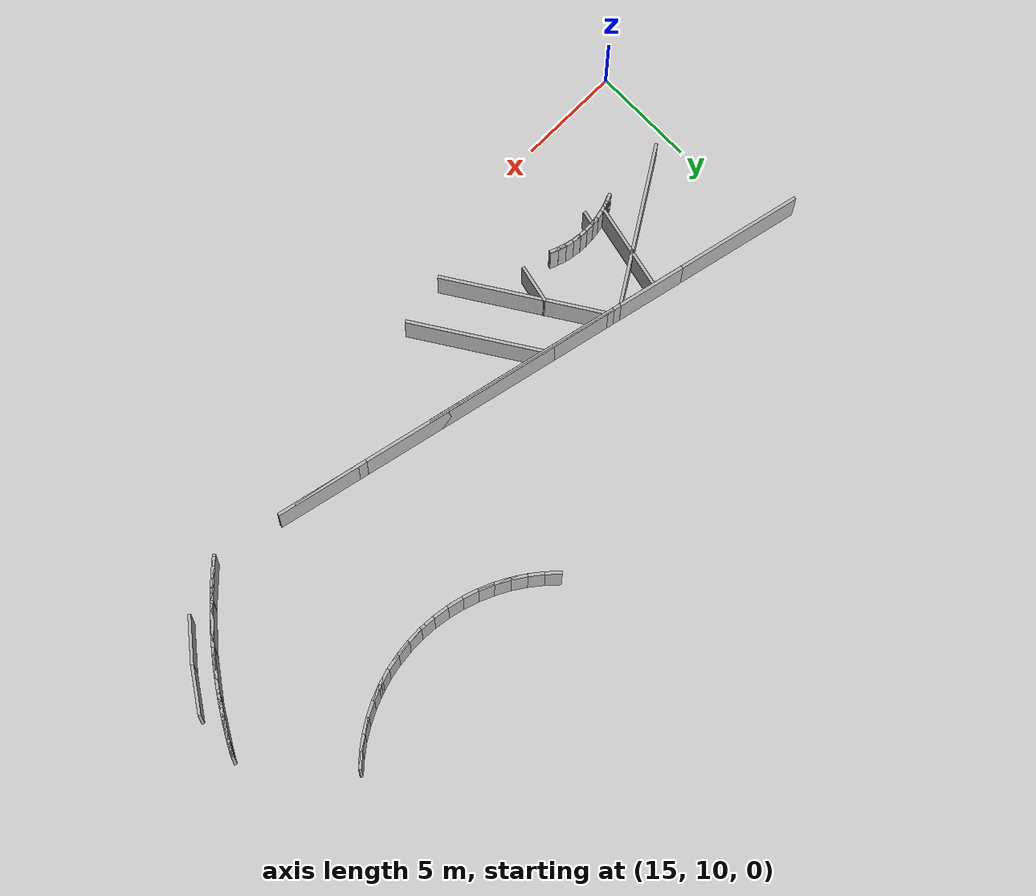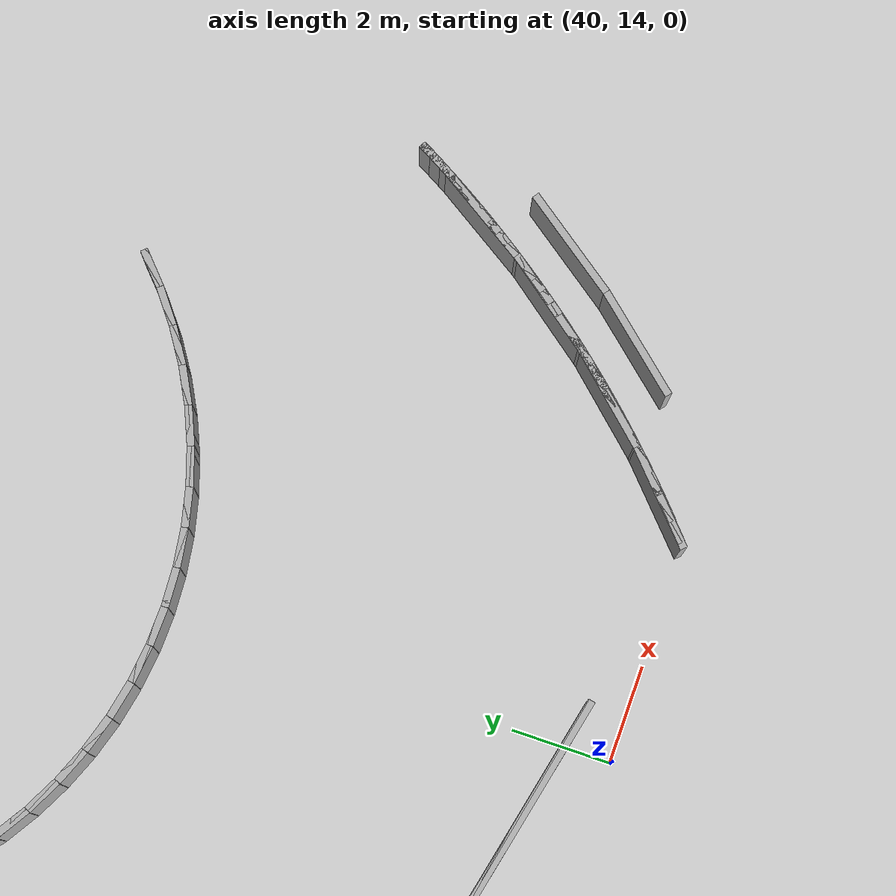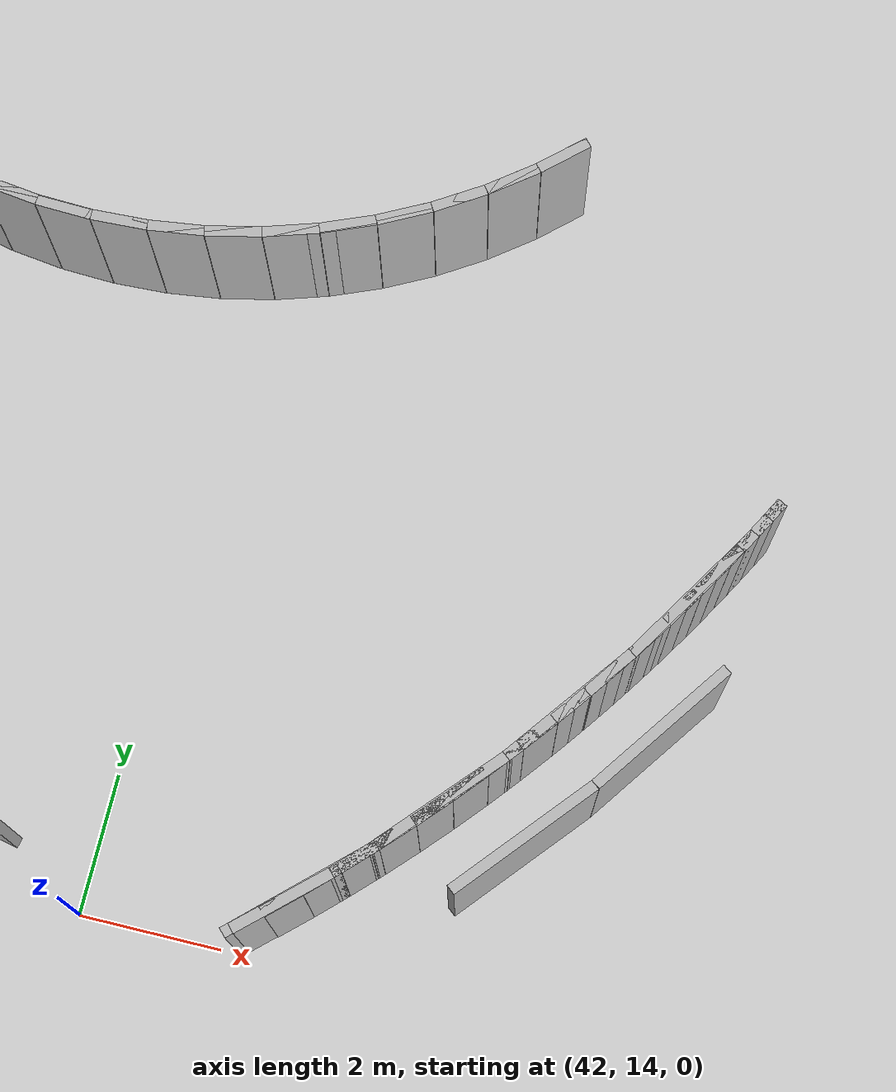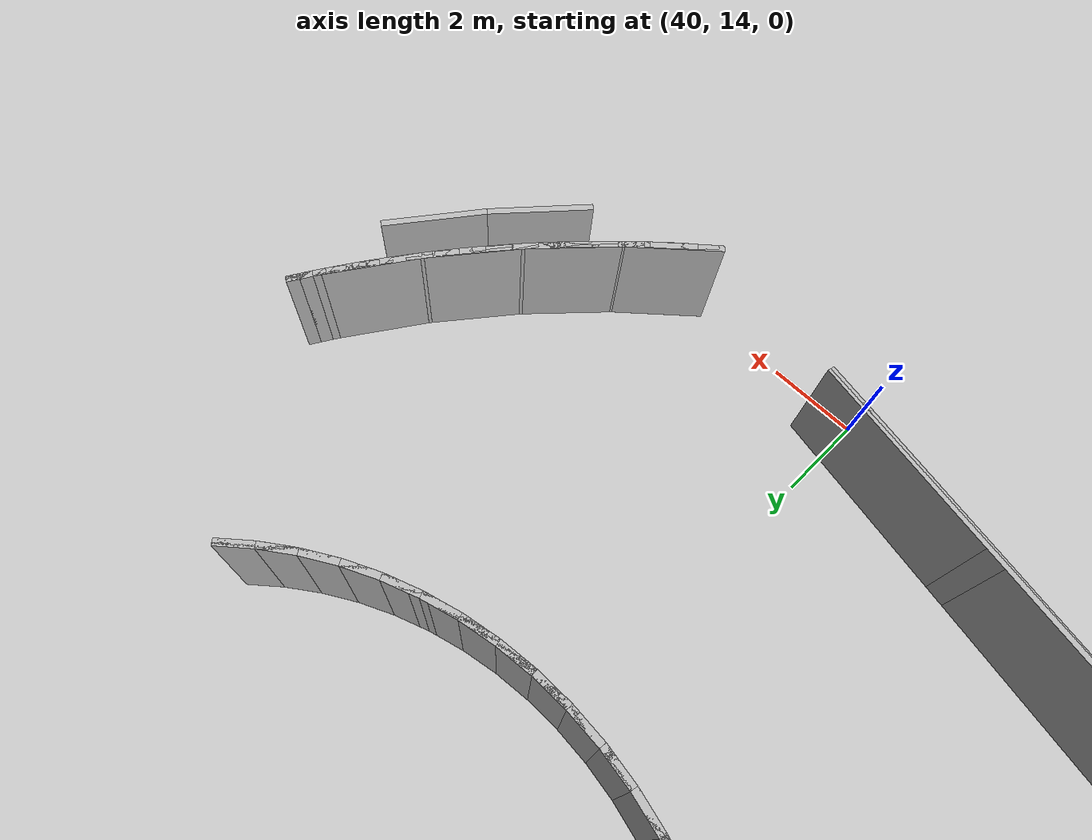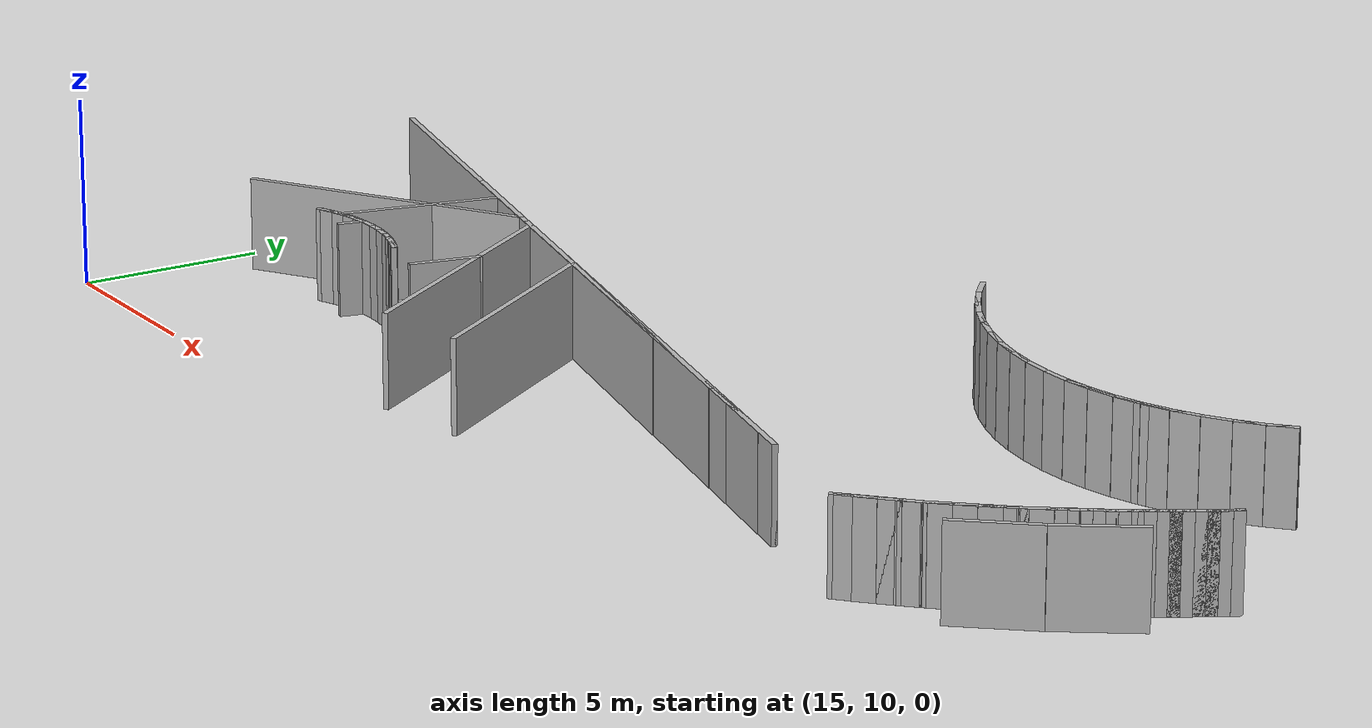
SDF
<sdf version="1.6">
 <model name="sps_2304">
  <static>1</static>
  <allow_auto_disable>0</allow_auto_disable>
  <link name="Wall1454">
   <collision name="collision"><geometry><box><size>18.0988 0.15 2.5</size></box></geometry></collision>
   <visual name="visual">
    <geometry><box><size>18.0988 0.15 2.5</size></box></geometry>
    <transparency>0.0</transparency>
   </visual>
   <pose>32.0788 16.6818 1.25 0 0 -0.213736</pose>
  </link>
  <link name="Wall2070">
   <collision name="collision"><geometry><box><size>1.91861 0.15 2.5</size></box></geometry></collision>
   <visual name="visual">
    <geometry><box><size>1.91861 0.15 2.5</size></box></geometry>
    <transparency>0.0</transparency>
   </visual>
   <pose>24.9954 15.1911 1.25 0 0 -1.78487</pose>
  </link>
  <link name="Wall2394">
   <collision name="collision"><geometry><box><size>4.31626 0.15 2.5</size></box></geometry></collision>
   <visual name="visual">
    <geometry><box><size>4.31626 0.15 2.5</size></box></geometry>
    <transparency>0.0</transparency>
   </visual>
   <pose>20.6217 16.9621 1.25 0 -0 1.35657</pose>
  </link>
  <link name="Wall2921">
   <collision name="collision"><geometry><box><size>20.0003 0.15 2.5</size></box></geometry></collision>
   <visual name="visual">
    <geometry><box><size>20.0003 0.15 2.5</size></box></geometry>
    <transparency>0.0</transparency>
   </visual>
   <pose>23.2331 18.5973 1.25 0 0 -0.214192</pose>
  </link>
  <link name="Wall4091">
   <collision name="collision"><geometry><box><size>1.46341 0.15 2.5</size></box></geometry></collision>
   <visual name="visual">
    <geometry><box><size>1.46341 0.15 2.5</size></box></geometry>
    <transparency>0.0</transparency>
   </visual>
   <pose>44.8718 14.6093 1.25 0 -0 0.747138</pose>
  </link>
  <link name="Wall5081">
   <collision name="collision"><geometry><box><size>7.98288 0.15 2.5</size></box></geometry></collision>
   <visual name="visual">
    <geometry><box><size>7.98288 0.15 2.5</size></box></geometry>
    <transparency>0.0</transparency>
   </visual>
   <pose>25.7436 15.1719 1.25 0 -0 2.14348</pose>
  </link>
  <link name="Wall5082">
   <collision name="collision"><geometry><box><size>3.39548 0.15 2.5</size></box></geometry></collision>
   <visual name="visual">
    <geometry><box><size>3.39548 0.15 2.5</size></box></geometry>
    <transparency>0.0</transparency>
   </visual>
   <pose>25.2397 18.1663 1.25 0 0 -0.213789</pose>
  </link>
  <link name="Wall5083">
   <collision name="collision"><geometry><box><size>6.57427 0.15 2.5</size></box></geometry></collision>
   <visual name="visual">
    <geometry><box><size>6.57427 0.15 2.5</size></box></geometry>
    <transparency>0.0</transparency>
   </visual>
   <pose>28.6811 15.0441 1.25 0 0 -0.997731</pose>
  </link>
  <link name="Wall7805">
   <collision name="collision"><geometry><box><size>0.282259 0.15 2.5</size></box></geometry></collision>
   <visual name="visual">
    <geometry><box><size>0.282259 0.15 2.5</size></box></geometry>
    <transparency>0.0</transparency>
   </visual>
   <pose>49.941 21.1646 1.25 0 0 -2.06143</pose>
  </link>
  <link name="Wall7806">
   <collision name="collision"><geometry><box><size>0.282415 0.15 2.5</size></box></geometry></collision>
   <visual name="visual">
    <geometry><box><size>0.282415 0.15 2.5</size></box></geometry>
    <transparency>0.0</transparency>
   </visual>
   <pose>49.8066 20.9163 1.25 0 0 -2.07244</pose>
  </link>
  <link name="Wall7807">
   <collision name="collision"><geometry><box><size>0.282339 0.15 2.5</size></box></geometry></collision>
   <visual name="visual">
    <geometry><box><size>0.282339 0.15 2.5</size></box></geometry>
    <transparency>0.0</transparency>
   </visual>
   <pose>49.6694 20.6695 1.25 0 0 -2.08396</pose>
  </link>
  <link name="Wall7808">
   <collision name="collision"><geometry><box><size>0.282406 0.15 2.5</size></box></geometry></collision>
   <visual name="visual">
    <geometry><box><size>0.282406 0.15 2.5</size></box></geometry>
    <transparency>0.0</transparency>
   </visual>
   <pose>49.5293 20.4243 1.25 0 0 -2.09528</pose>
  </link>
  <link name="Wall7809">
   <collision name="collision"><geometry><box><size>0.282279 0.15 2.5</size></box></geometry></collision>
   <visual name="visual">
    <geometry><box><size>0.282279 0.15 2.5</size></box></geometry>
    <transparency>0.0</transparency>
   </visual>
   <pose>49.3866 20.1807 1.25 0 0 -2.10606</pose>
  </link>
  <link name="Wall7810">
   <collision name="collision"><geometry><box><size>0.282365 0.15 2.5</size></box></geometry></collision>
   <visual name="visual">
    <geometry><box><size>0.282365 0.15 2.5</size></box></geometry>
    <transparency>0.0</transparency>
   </visual>
   <pose>49.2413 19.9387 1.25 0 0 -2.11748</pose>
  </link>
  <link name="Wall7811">
   <collision name="collision"><geometry><box><size>0.282435 0.15 2.5</size></box></geometry></collision>
   <visual name="visual">
    <geometry><box><size>0.282435 0.15 2.5</size></box></geometry>
    <transparency>0.0</transparency>
   </visual>
   <pose>49.0931 19.6983 1.25 0 0 -2.12901</pose>
  </link>
  <link name="Wall7812">
   <collision name="collision"><geometry><box><size>0.282441 0.15 2.5</size></box></geometry></collision>
   <visual name="visual">
    <geometry><box><size>0.282441 0.15 2.5</size></box></geometry>
    <transparency>0.0</transparency>
   </visual>
   <pose>48.9421 19.4596 1.25 0 0 -2.14076</pose>
  </link>
  <link name="Wall7813">
   <collision name="collision"><geometry><box><size>0.282384 0.15 2.5</size></box></geometry></collision>
   <visual name="visual">
    <geometry><box><size>0.282384 0.15 2.5</size></box></geometry>
    <transparency>0.0</transparency>
   </visual>
   <pose>48.7884 19.2227 1.25 0 0 -2.15196</pose>
  </link>
  <link name="Wall7814">
   <collision name="collision"><geometry><box><size>0.282329 0.15 2.5</size></box></geometry></collision>
   <visual name="visual">
    <geometry><box><size>0.282329 0.15 2.5</size></box></geometry>
    <transparency>0.0</transparency>
   </visual>
   <pose>48.6321 18.9875 1.25 0 0 -2.16222</pose>
  </link>
  <link name="Wall7815">
   <collision name="collision"><geometry><box><size>0.282259 0.15 2.5</size></box></geometry></collision>
   <visual name="visual">
    <geometry><box><size>0.282259 0.15 2.5</size></box></geometry>
    <transparency>0.0</transparency>
   </visual>
   <pose>48.4733 18.7541 1.25 0 0 -2.17415</pose>
  </link>
  <link name="Wall7816">
   <collision name="collision"><geometry><box><size>0.282443 0.15 2.5</size></box></geometry></collision>
   <visual name="visual">
    <geometry><box><size>0.282443 0.15 2.5</size></box></geometry>
    <transparency>0.0</transparency>
   </visual>
   <pose>48.3119 18.5225 1.25 0 0 -2.18529</pose>
  </link>
  <link name="Wall7817">
   <collision name="collision"><geometry><box><size>0.282303 0.15 2.5</size></box></geometry></collision>
   <visual name="visual">
    <geometry><box><size>0.282303 0.15 2.5</size></box></geometry>
    <transparency>0.0</transparency>
   </visual>
   <pose>48.1476 18.2928 1.25 0 0 -2.19761</pose>
  </link>
  <link name="Wall7818">
   <collision name="collision"><geometry><box><size>0.282379 0.15 2.5</size></box></geometry></collision>
   <visual name="visual">
    <geometry><box><size>0.282379 0.15 2.5</size></box></geometry>
    <transparency>0.0</transparency>
   </visual>
   <pose>47.9809 18.065 1.25 0 0 -2.20786</pose>
  </link>
  <link name="Wall7819">
   <collision name="collision"><geometry><box><size>0.282535 0.15 2.5</size></box></geometry></collision>
   <visual name="visual">
    <geometry><box><size>0.282535 0.15 2.5</size></box></geometry>
    <transparency>0.0</transparency>
   </visual>
   <pose>47.8116 17.8389 1.25 0 0 -2.21905</pose>
  </link>
  <link name="Wall7820">
   <collision name="collision"><geometry><box><size>0.564608 0.15 2.5</size></box></geometry></collision>
   <visual name="visual">
    <geometry><box><size>0.564608 0.15 2.5</size></box></geometry>
    <transparency>0.0</transparency>
   </visual>
   <pose>47.5519 17.5043 1.25 0 0 -2.23674</pose>
  </link>
  <link name="Wall7821">
   <collision name="collision"><geometry><box><size>0.564838 0.15 2.5</size></box></geometry></collision>
   <visual name="visual">
    <geometry><box><size>0.564838 0.15 2.5</size></box></geometry>
    <transparency>0.0</transparency>
   </visual>
   <pose>47.1981 17.0642 1.25 0 0 -2.25916</pose>
  </link>
  <link name="Wall7822">
   <collision name="collision"><geometry><box><size>0.564842 0.15 2.5</size></box></geometry></collision>
   <visual name="visual">
    <geometry><box><size>0.564842 0.15 2.5</size></box></geometry>
    <transparency>0.0</transparency>
   </visual>
   <pose>46.8344 16.632 1.25 0 0 -2.28132</pose>
  </link>
  <link name="Wall7823">
   <collision name="collision"><geometry><box><size>0.564625 0.15 2.5</size></box></geometry></collision>
   <visual name="visual">
    <geometry><box><size>0.564625 0.15 2.5</size></box></geometry>
    <transparency>0.0</transparency>
   </visual>
   <pose>46.4612 16.2082 1.25 0 0 -2.30427</pose>
  </link>
  <link name="Wall7824">
   <collision name="collision"><geometry><box><size>0.564676 0.15 2.5</size></box></geometry></collision>
   <visual name="visual">
    <geometry><box><size>0.564676 0.15 2.5</size></box></geometry>
    <transparency>0.0</transparency>
   </visual>
   <pose>46.0786 15.793 1.25 0 0 -2.32638</pose>
  </link>
  <link name="Wall7825">
   <collision name="collision"><geometry><box><size>0.564827 0.15 2.5</size></box></geometry></collision>
   <visual name="visual">
    <geometry><box><size>0.564827 0.15 2.5</size></box></geometry>
    <transparency>0.0</transparency>
   </visual>
   <pose>45.6867 15.3864 1.25 0 0 -2.34924</pose>
  </link>
  <link name="Wall7826">
   <collision name="collision"><geometry><box><size>0.564754 0.15 2.5</size></box></geometry></collision>
   <visual name="visual">
    <geometry><box><size>0.564754 0.15 2.5</size></box></geometry>
    <transparency>0.0</transparency>
   </visual>
   <pose>45.2856 14.9888 1.25 0 0 -2.37194</pose>
  </link>
  <link name="Wall7832">
   <collision name="collision"><geometry><box><size>18.0988 0.15 2.5</size></box></geometry></collision>
   <visual name="visual">
    <geometry><box><size>18.0988 0.15 2.5</size></box></geometry>
    <transparency>0.0</transparency>
   </visual>
   <pose>32.0788 16.6818 1.25 0 -0 2.92786</pose>
  </link>
  <link name="Wall9503">
   <collision name="collision"><geometry><box><size>3.38951 0.15 2.5</size></box></geometry></collision>
   <visual name="visual">
    <geometry><box><size>3.38951 0.15 2.5</size></box></geometry>
    <transparency>0.0</transparency>
   </visual>
   <pose>21.224 19.0398 1.25 0 0 -0.214595</pose>
  </link>
  <link name="Wall9504">
   <collision name="collision"><geometry><box><size>7.98252 0.15 2.5</size></box></geometry></collision>
   <visual name="visual">
    <geometry><box><size>7.98252 0.15 2.5</size></box></geometry>
    <transparency>0.0</transparency>
   </visual>
   <pose>19.525 16.5166 1.25 0 0 -2.56907</pose>
  </link>
  <link name="Wall9969">
   <collision name="collision"><geometry><box><size>2.60003 0.15 2.5</size></box></geometry></collision>
   <visual name="visual">
    <geometry><box><size>2.60003 0.15 2.5</size></box></geometry>
    <transparency>0.0</transparency>
   </visual>
   <pose>38.1368 15.3661 1.25 0 0 -0.214246</pose>
  </link>
  <link name="Wall10477">
   <collision name="collision"><geometry><box><size>3.79995 0.15 2.5</size></box></geometry></collision>
   <visual name="visual">
    <geometry><box><size>3.79995 0.15 2.5</size></box></geometry>
    <transparency>0.0</transparency>
   </visual>
   <pose>38.1859 15.3554 1.25 0 0 -0.214315</pose>
  </link>
  <link name="Wall10631">
   <collision name="collision"><geometry><box><size>0.396932 0.15 2.5</size></box></geometry></collision>
   <visual name="visual">
    <geometry><box><size>0.396932 0.15 2.5</size></box></geometry>
    <transparency>0.0</transparency>
   </visual>
   <pose>19.7449 14.6774 1.25 0 -0 0.392414</pose>
  </link>
  <link name="Wall10632">
   <collision name="collision"><geometry><box><size>0.396923 0.15 2.5</size></box></geometry></collision>
   <visual name="visual">
    <geometry><box><size>0.396923 0.15 2.5</size></box></geometry>
    <transparency>0.0</transparency>
   </visual>
   <pose>20.1175 14.8129 1.25 0 -0 0.305022</pose>
  </link>
  <link name="Wall10633">
   <collision name="collision"><geometry><box><size>0.396768 0.15 2.5</size></box></geometry></collision>
   <visual name="visual">
    <geometry><box><size>0.396768 0.15 2.5</size></box></geometry>
    <transparency>0.0</transparency>
   </visual>
   <pose>20.5005 14.9154 1.25 0 -0 0.217851</pose>
  </link>
  <link name="Wall10634">
   <collision name="collision"><geometry><box><size>0.397194 0.15 2.5</size></box></geometry></collision>
   <visual name="visual">
    <geometry><box><size>0.397194 0.15 2.5</size></box></geometry>
    <transparency>0.0</transparency>
   </visual>
   <pose>20.8911 14.9842 1.25 0 -0 0.130835</pose>
  </link>
  <link name="Wall10635">
   <collision name="collision"><geometry><box><size>0.396797 0.15 2.5</size></box></geometry></collision>
   <visual name="visual">
    <geometry><box><size>0.396797 0.15 2.5</size></box></geometry>
    <transparency>0.0</transparency>
   </visual>
   <pose>21.2862 15.0187 1.25 0 -0 0.0433908</pose>
  </link>
  <link name="Wall10636">
   <collision name="collision"><geometry><box><size>0.396988 0.15 2.5</size></box></geometry></collision>
   <visual name="visual">
    <geometry><box><size>0.396988 0.15 2.5</size></box></geometry>
    <transparency>0.0</transparency>
   </visual>
   <pose>21.6828 15.0186 1.25 0 0 -0.0438316</pose>
  </link>
  <link name="Wall10637">
   <collision name="collision"><geometry><box><size>0.397036 0.15 2.5</size></box></geometry></collision>
   <visual name="visual">
    <geometry><box><size>0.397036 0.15 2.5</size></box></geometry>
    <transparency>0.0</transparency>
   </visual>
   <pose>22.0779 14.9839 1.25 0 0 -0.131353</pose>
  </link>
  <link name="Wall10638">
   <collision name="collision"><geometry><box><size>0.397 0.15 2.5</size></box></geometry></collision>
   <visual name="visual">
    <geometry><box><size>0.397 0.15 2.5</size></box></geometry>
    <transparency>0.0</transparency>
   </visual>
   <pose>22.4685 14.9149 1.25 0 0 -0.218352</pose>
  </link>
  <link name="Wall10639">
   <collision name="collision"><geometry><box><size>0.396803 0.15 2.5</size></box></geometry></collision>
   <visual name="visual">
    <geometry><box><size>0.396803 0.15 2.5</size></box></geometry>
    <transparency>0.0</transparency>
   </visual>
   <pose>22.8515 14.8122 1.25 0 0 -0.305601</pose>
  </link>
  <link name="Wall10640">
   <collision name="collision"><geometry><box><size>0.397025 0.15 2.5</size></box></geometry></collision>
   <visual name="visual">
    <geometry><box><size>0.397025 0.15 2.5</size></box></geometry>
    <transparency>0.0</transparency>
   </visual>
   <pose>23.2241 14.6765 1.25 0 0 -0.392982</pose>
  </link>
  <link name="Wall11242">
   <collision name="collision"><geometry><box><size>0.0033038 0.15 2.5</size></box></geometry></collision>
   <visual name="visual">
    <geometry><box><size>0.0033038 0.15 2.5</size></box></geometry>
    <transparency>0.0</transparency>
   </visual>
   <pose>22.574 14.8928 1.25 0 0 -0.438859</pose>
  </link>
  <link name="Wall11243">
   <collision name="collision"><geometry><box><size>0.371323 0.15 2.5</size></box></geometry></collision>
   <visual name="visual">
    <geometry><box><size>0.371323 0.15 2.5</size></box></geometry>
    <transparency>0.0</transparency>
   </visual>
   <pose>22.7537 14.8403 1.25 0 0 -0.28286</pose>
  </link>
  <link name="Wall11244">
   <collision name="collision"><geometry><box><size>0.371276 0.15 2.5</size></box></geometry></collision>
   <visual name="visual">
    <geometry><box><size>0.371276 0.15 2.5</size></box></geometry>
    <transparency>0.0</transparency>
   </visual>
   <pose>23.1054 14.7222 1.25 0 0 -0.36512</pose>
  </link>
  <link name="Wall11309">
   <collision name="collision"><geometry><box><size>0.785075 0.15 2.5</size></box></geometry></collision>
   <visual name="visual">
    <geometry><box><size>0.785075 0.15 2.5</size></box></geometry>
    <transparency>0.0</transparency>
   </visual>
   <pose>46.0551 25.4238 1.25 0 0 -2.40013</pose>
  </link>
  <link name="Wall11310">
   <collision name="collision"><geometry><box><size>0.785249 0.15 2.5</size></box></geometry></collision>
   <visual name="visual">
    <geometry><box><size>0.785249 0.15 2.5</size></box></geometry>
    <transparency>0.0</transparency>
   </visual>
   <pose>45.4541 24.9198 1.25 0 0 -2.48749</pose>
  </link>
  <link name="Wall11311">
   <collision name="collision"><geometry><box><size>0.785062 0.15 2.5</size></box></geometry></collision>
   <visual name="visual">
    <geometry><box><size>0.785062 0.15 2.5</size></box></geometry>
    <transparency>0.0</transparency>
   </visual>
   <pose>44.8114 24.4701 1.25 0 0 -2.57464</pose>
  </link>
  <link name="Wall11312">
   <collision name="collision"><geometry><box><size>0.785237 0.15 2.5</size></box></geometry></collision>
   <visual name="visual">
    <geometry><box><size>0.785237 0.15 2.5</size></box></geometry>
    <transparency>0.0</transparency>
   </visual>
   <pose>44.1319 24.0781 1.25 0 0 -2.66185</pose>
  </link>
  <link name="Wall11313">
   <collision name="collision"><geometry><box><size>0.785125 0.15 2.5</size></box></geometry></collision>
   <visual name="visual">
    <geometry><box><size>0.785125 0.15 2.5</size></box></geometry>
    <transparency>0.0</transparency>
   </visual>
   <pose>43.421 23.7467 1.25 0 0 -2.74903</pose>
  </link>
  <link name="Wall11314">
   <collision name="collision"><geometry><box><size>0.785275 0.15 2.5</size></box></geometry></collision>
   <visual name="visual">
    <geometry><box><size>0.785275 0.15 2.5</size></box></geometry>
    <transparency>0.0</transparency>
   </visual>
   <pose>42.6837 23.4786 1.25 0 0 -2.83656</pose>
  </link>
  <link name="Wall11315">
   <collision name="collision"><geometry><box><size>0.785122 0.15 2.5</size></box></geometry></collision>
   <visual name="visual">
    <geometry><box><size>0.785122 0.15 2.5</size></box></geometry>
    <transparency>0.0</transparency>
   </visual>
   <pose>41.926 23.2758 1.25 0 0 -2.9236</pose>
  </link>
  <link name="Wall11316">
   <collision name="collision"><geometry><box><size>0.785119 0.15 2.5</size></box></geometry></collision>
   <visual name="visual">
    <geometry><box><size>0.785119 0.15 2.5</size></box></geometry>
    <transparency>0.0</transparency>
   </visual>
   <pose>41.1535 23.1398 1.25 0 0 -3.01109</pose>
  </link>
  <link name="Wall11317">
   <collision name="collision"><geometry><box><size>0.785099 0.15 2.5</size></box></geometry></collision>
   <visual name="visual">
    <geometry><box><size>0.785099 0.15 2.5</size></box></geometry>
    <transparency>0.0</transparency>
   </visual>
   <pose>40.3721 23.0717 1.25 0 0 -3.09828</pose>
  </link>
  <link name="Wall11318">
   <collision name="collision"><geometry><box><size>0.785176 0.15 2.5</size></box></geometry></collision>
   <visual name="visual">
    <geometry><box><size>0.785176 0.15 2.5</size></box></geometry>
    <transparency>0.0</transparency>
   </visual>
   <pose>39.5877 23.0719 1.25 0 -0 3.09781</pose>
  </link>
  <link name="Wall11319">
   <collision name="collision"><geometry><box><size>0.785146 0.15 2.5</size></box></geometry></collision>
   <visual name="visual">
    <geometry><box><size>0.785146 0.15 2.5</size></box></geometry>
    <transparency>0.0</transparency>
   </visual>
   <pose>38.8063 23.1405 1.25 0 -0 3.01023</pose>
  </link>
  <link name="Wall11320">
   <collision name="collision"><geometry><box><size>0.785082 0.15 2.5</size></box></geometry></collision>
   <visual name="visual">
    <geometry><box><size>0.785082 0.15 2.5</size></box></geometry>
    <transparency>0.0</transparency>
   </visual>
   <pose>38.0339 23.277 1.25 0 -0 2.92311</pose>
  </link>
  <link name="Wall11321">
   <collision name="collision"><geometry><box><size>0.785152 0.15 2.5</size></box></geometry></collision>
   <visual name="visual">
    <geometry><box><size>0.785152 0.15 2.5</size></box></geometry>
    <transparency>0.0</transparency>
   </visual>
   <pose>37.2763 23.4802 1.25 0 -0 2.83602</pose>
  </link>
  <link name="Wall11322">
   <collision name="collision"><geometry><box><size>0.785312 0.15 2.5</size></box></geometry></collision>
   <visual name="visual">
    <geometry><box><size>0.785312 0.15 2.5</size></box></geometry>
    <transparency>0.0</transparency>
   </visual>
   <pose>36.5392 23.7487 1.25 0 -0 2.74846</pose>
  </link>
  <link name="Wall11323">
   <collision name="collision"><geometry><box><size>0.784968 0.15 2.5</size></box></geometry></collision>
   <visual name="visual">
    <geometry><box><size>0.784968 0.15 2.5</size></box></geometry>
    <transparency>0.0</transparency>
   </visual>
   <pose>35.8284 24.0804 1.25 0 -0 2.6615</pose>
  </link>
  <link name="Wall11324">
   <collision name="collision"><geometry><box><size>0.785339 0.15 2.5</size></box></geometry></collision>
   <visual name="visual">
    <geometry><box><size>0.785339 0.15 2.5</size></box></geometry>
    <transparency>0.0</transparency>
   </visual>
   <pose>35.1492 24.4728 1.25 0 -0 2.57394</pose>
  </link>
  <link name="Wall11325">
   <collision name="collision"><geometry><box><size>0.78507 0.15 2.5</size></box></geometry></collision>
   <visual name="visual">
    <geometry><box><size>0.78507 0.15 2.5</size></box></geometry>
    <transparency>0.0</transparency>
   </visual>
   <pose>34.5067 24.9229 1.25 0 -0 2.48702</pose>
  </link>
  <link name="Wall16829">
   <collision name="collision"><geometry><box><size>0.397058 0.15 2.5</size></box></geometry></collision>
   <visual name="visual">
    <geometry><box><size>0.397058 0.15 2.5</size></box></geometry>
    <transparency>0.0</transparency>
   </visual>
   <pose>23.2158 14.6959 1.25 0 -0 2.74881</pose>
  </link>
  <link name="Wall16830">
   <collision name="collision"><geometry><box><size>0.396996 0.15 2.5</size></box></geometry></collision>
   <visual name="visual">
    <geometry><box><size>0.396996 0.15 2.5</size></box></geometry>
    <transparency>0.0</transparency>
   </visual>
   <pose>22.8431 14.8316 1.25 0 -0 2.83598</pose>
  </link>
  <link name="Wall16831">
   <collision name="collision"><geometry><box><size>0.396821 0.15 2.5</size></box></geometry></collision>
   <visual name="visual">
    <geometry><box><size>0.396821 0.15 2.5</size></box></geometry>
    <transparency>0.0</transparency>
   </visual>
   <pose>22.4601 14.9343 1.25 0 -0 2.92314</pose>
  </link>
  <link name="Wall16832">
   <collision name="collision"><geometry><box><size>0.396975 0.15 2.5</size></box></geometry></collision>
   <visual name="visual">
    <geometry><box><size>0.396975 0.15 2.5</size></box></geometry>
    <transparency>0.0</transparency>
   </visual>
   <pose>22.0697 15.0033 1.25 0 -0 3.01022</pose>
  </link>
  <link name="Wall16833">
   <collision name="collision"><geometry><box><size>0.396988 0.15 2.5</size></box></geometry></collision>
   <visual name="visual">
    <geometry><box><size>0.396988 0.15 2.5</size></box></geometry>
    <transparency>0.0</transparency>
   </visual>
   <pose>21.6746 15.038 1.25 0 -0 3.09776</pose>
  </link>
  <link name="Wall16834">
   <collision name="collision"><geometry><box><size>0.39698 0.15 2.5</size></box></geometry></collision>
   <visual name="visual">
    <geometry><box><size>0.39698 0.15 2.5</size></box></geometry>
    <transparency>0.0</transparency>
   </visual>
   <pose>21.278 15.0381 1.25 0 0 -3.09822</pose>
  </link>
  <link name="Wall16835">
   <collision name="collision"><geometry><box><size>0.397012 0.15 2.5</size></box></geometry></collision>
   <visual name="visual">
    <geometry><box><size>0.397012 0.15 2.5</size></box></geometry>
    <transparency>0.0</transparency>
   </visual>
   <pose>20.8829 15.0036 1.25 0 0 -3.0107</pose>
  </link>
  <link name="Wall16836">
   <collision name="collision"><geometry><box><size>0.396947 0.15 2.5</size></box></geometry></collision>
   <visual name="visual">
    <geometry><box><size>0.396947 0.15 2.5</size></box></geometry>
    <transparency>0.0</transparency>
   </visual>
   <pose>20.4923 14.9348 1.25 0 0 -2.92384</pose>
  </link>
  <link name="Wall16837">
   <collision name="collision"><geometry><box><size>0.396923 0.15 2.5</size></box></geometry></collision>
   <visual name="visual">
    <geometry><box><size>0.396923 0.15 2.5</size></box></geometry>
    <transparency>0.0</transparency>
   </visual>
   <pose>20.1092 14.8323 1.25 0 0 -2.83657</pose>
  </link>
  <link name="Wall16838">
   <collision name="collision"><geometry><box><size>0.397011 0.15 2.5</size></box></geometry></collision>
   <visual name="visual">
    <geometry><box><size>0.397011 0.15 2.5</size></box></geometry>
    <transparency>0.0</transparency>
   </visual>
   <pose>19.7365 14.6968 1.25 0 0 -2.7491</pose>
  </link>
  <link name="Wall16883">
   <collision name="collision"><geometry><box><size>2.31549 0.15 2.5</size></box></geometry></collision>
   <visual name="visual">
    <geometry><box><size>2.31549 0.15 2.5</size></box></geometry>
    <transparency>0.0</transparency>
   </visual>
   <pose>47.6927 16.1342 1.25 0 -0 0.867091</pose>
  </link>
  <link name="Wall16884">
   <collision name="collision"><geometry><box><size>2.31537 0.15 2.5</size></box></geometry></collision>
   <visual name="visual">
    <geometry><box><size>2.31537 0.15 2.5</size></box></geometry>
    <transparency>0.0</transparency>
   </visual>
   <pose>49.1095 17.9627 1.25 0 -0 0.956149</pose>
  </link>
  <link name="Wall23965">
   <collision name="collision"><geometry><box><size>3.38951 0.15 2.5</size></box></geometry></collision>
   <visual name="visual">
    <geometry><box><size>3.38951 0.15 2.5</size></box></geometry>
    <transparency>0.0</transparency>
   </visual>
   <pose>21.224 19.0398 1.25 0 0 -0.214595</pose>
  </link>
  <link name="Wall23966">
   <collision name="collision"><geometry><box><size>7.98252 0.15 2.5</size></box></geometry></collision>
   <visual name="visual">
    <geometry><box><size>7.98252 0.15 2.5</size></box></geometry>
    <transparency>0.0</transparency>
   </visual>
   <pose>19.525 16.5166 1.25 0 0 -2.56907</pose>
  </link>
  <link name="Wall23968">
   <collision name="collision"><geometry><box><size>0.399868 0.15 2.5</size></box></geometry></collision>
   <visual name="visual">
    <geometry><box><size>0.399868 0.15 2.5</size></box></geometry>
    <transparency>0.0</transparency>
   </visual>
   <pose>19.974 14.7878 1.25 0 0 -2.80787</pose>
  </link>
  <link name="Wall23969">
   <collision name="collision"><geometry><box><size>0.399901 0.15 2.5</size></box></geometry></collision>
   <visual name="visual">
    <geometry><box><size>0.399901 0.15 2.5</size></box></geometry>
    <transparency>0.0</transparency>
   </visual>
   <pose>19.6027 14.6404 1.25 0 0 -2.71953</pose>
  </link>
  <link name="Wall27050">
   <collision name="collision"><geometry><box><size>7.98288 0.15 2.5</size></box></geometry></collision>
   <visual name="visual">
    <geometry><box><size>7.98288 0.15 2.5</size></box></geometry>
    <transparency>0.0</transparency>
   </visual>
   <pose>25.7436 15.1719 1.25 0 -0 2.14348</pose>
  </link>
  <link name="Wall27051">
   <collision name="collision"><geometry><box><size>3.39548 0.15 2.5</size></box></geometry></collision>
   <visual name="visual">
    <geometry><box><size>3.39548 0.15 2.5</size></box></geometry>
    <transparency>0.0</transparency>
   </visual>
   <pose>25.2397 18.1663 1.25 0 0 -0.213789</pose>
  </link>
  <link name="Wall27052">
   <collision name="collision"><geometry><box><size>6.57427 0.15 2.5</size></box></geometry></collision>
   <visual name="visual">
    <geometry><box><size>6.57427 0.15 2.5</size></box></geometry>
    <transparency>0.0</transparency>
   </visual>
   <pose>28.6811 15.0441 1.25 0 0 -0.997731</pose>
  </link>
  <link name="Wall29103">
   <collision name="collision"><geometry><box><size>0.785228 0.15 2.5</size></box></geometry></collision>
   <visual name="visual">
    <geometry><box><size>0.785228 0.15 2.5</size></box></geometry>
    <transparency>0.0</transparency>
   </visual>
   <pose>33.9056 25.4272 1.25 0 0 -0.742019</pose>
  </link>
  <link name="Wall29104">
   <collision name="collision"><geometry><box><size>0.785219 0.15 2.5</size></box></geometry></collision>
   <visual name="visual">
    <geometry><box><size>0.785219 0.15 2.5</size></box></geometry>
    <transparency>0.0</transparency>
   </visual>
   <pose>34.5064 24.9228 1.25 0 0 -0.654819</pose>
  </link>
  <link name="Wall29105">
   <collision name="collision"><geometry><box><size>0.785105 0.15 2.5</size></box></geometry></collision>
   <visual name="visual">
    <geometry><box><size>0.785105 0.15 2.5</size></box></geometry>
    <transparency>0.0</transparency>
   </visual>
   <pose>35.1489 24.4727 1.25 0 0 -0.567475</pose>
  </link>
  <link name="Wall29106">
   <collision name="collision"><geometry><box><size>0.785189 0.15 2.5</size></box></geometry></collision>
   <visual name="visual">
    <geometry><box><size>0.785189 0.15 2.5</size></box></geometry>
    <transparency>0.0</transparency>
   </visual>
   <pose>35.8281 24.0803 1.25 0 0 -0.4803</pose>
  </link>
  <link name="Wall29107">
   <collision name="collision"><geometry><box><size>0.785219 0.15 2.5</size></box></geometry></collision>
   <visual name="visual">
    <geometry><box><size>0.785219 0.15 2.5</size></box></geometry>
    <transparency>0.0</transparency>
   </visual>
   <pose>36.5389 23.7486 1.25 0 0 -0.392848</pose>
  </link>
  <link name="Wall29108">
   <collision name="collision"><geometry><box><size>0.785033 0.15 2.5</size></box></geometry></collision>
   <visual name="visual">
    <geometry><box><size>0.785033 0.15 2.5</size></box></geometry>
    <transparency>0.0</transparency>
   </visual>
   <pose>37.2759 23.4801 1.25 0 0 -0.305867</pose>
  </link>
  <link name="Wall29109">
   <collision name="collision"><geometry><box><size>0.785274 0.15 2.5</size></box></geometry></collision>
   <visual name="visual">
    <geometry><box><size>0.785274 0.15 2.5</size></box></geometry>
    <transparency>0.0</transparency>
   </visual>
   <pose>38.0335 23.2768 1.25 0 0 -0.218509</pose>
  </link>
  <link name="Wall29110">
   <collision name="collision"><geometry><box><size>0.785199 0.15 2.5</size></box></geometry></collision>
   <visual name="visual">
    <geometry><box><size>0.785199 0.15 2.5</size></box></geometry>
    <transparency>0.0</transparency>
   </visual>
   <pose>38.8061 23.1403 1.25 0 0 -0.131278</pose>
  </link>
  <link name="Wall29111">
   <collision name="collision"><geometry><box><size>0.785115 0.15 2.5</size></box></geometry></collision>
   <visual name="visual">
    <geometry><box><size>0.785115 0.15 2.5</size></box></geometry>
    <transparency>0.0</transparency>
   </visual>
   <pose>39.5875 23.0717 1.25 0 0 -0.0437818</pose>
  </link>
  <link name="Wall29112">
   <collision name="collision"><geometry><box><size>0.78516 0.15 2.5</size></box></geometry></collision>
   <visual name="visual">
    <geometry><box><size>0.78516 0.15 2.5</size></box></geometry>
    <transparency>0.0</transparency>
   </visual>
   <pose>40.3718 23.0715 1.25 0 -0 0.0433125</pose>
  </link>
  <link name="Wall29113">
   <collision name="collision"><geometry><box><size>0.785324 0.15 2.5</size></box></geometry></collision>
   <visual name="visual">
    <geometry><box><size>0.785324 0.15 2.5</size></box></geometry>
    <transparency>0.0</transparency>
   </visual>
   <pose>41.1534 23.1397 1.25 0 -0 0.130708</pose>
  </link>
  <link name="Wall29114">
   <collision name="collision"><geometry><box><size>0.785082 0.15 2.5</size></box></geometry></collision>
   <visual name="visual">
    <geometry><box><size>0.785082 0.15 2.5</size></box></geometry>
    <transparency>0.0</transparency>
   </visual>
   <pose>41.926 23.2757 1.25 0 -0 0.217767</pose>
  </link>
  <link name="Wall29115">
   <collision name="collision"><geometry><box><size>0.785155 0.15 2.5</size></box></geometry></collision>
   <visual name="visual">
    <geometry><box><size>0.785155 0.15 2.5</size></box></geometry>
    <transparency>0.0</transparency>
   </visual>
   <pose>42.6836 23.4785 1.25 0 -0 0.305329</pose>
  </link>
  <link name="Wall29116">
   <collision name="collision"><geometry><box><size>0.785225 0.15 2.5</size></box></geometry></collision>
   <visual name="visual">
    <geometry><box><size>0.785225 0.15 2.5</size></box></geometry>
    <transparency>0.0</transparency>
   </visual>
   <pose>43.4209 23.7466 1.25 0 -0 0.392256</pose>
  </link>
  <link name="Wall29117">
   <collision name="collision"><geometry><box><size>0.785237 0.15 2.5</size></box></geometry></collision>
   <visual name="visual">
    <geometry><box><size>0.785237 0.15 2.5</size></box></geometry>
    <transparency>0.0</transparency>
   </visual>
   <pose>44.1319 24.0779 1.25 0 -0 0.479743</pose>
  </link>
  <link name="Wall29118">
   <collision name="collision"><geometry><box><size>0.78503 0.15 2.5</size></box></geometry></collision>
   <visual name="visual">
    <geometry><box><size>0.78503 0.15 2.5</size></box></geometry>
    <transparency>0.0</transparency>
   </visual>
   <pose>44.8114 24.4699 1.25 0 -0 0.56689</pose>
  </link>
  <link name="Wall29119">
   <collision name="collision"><geometry><box><size>0.785286 0.15 2.5</size></box></geometry></collision>
   <visual name="visual">
    <geometry><box><size>0.785286 0.15 2.5</size></box></geometry>
    <transparency>0.0</transparency>
   </visual>
   <pose>45.4541 24.9196 1.25 0 -0 0.654165</pose>
  </link>
  <link name="Wall29120">
   <collision name="collision"><geometry><box><size>0.785198 0.15 2.5</size></box></geometry></collision>
   <visual name="visual">
    <geometry><box><size>0.785198 0.15 2.5</size></box></geometry>
    <transparency>0.0</transparency>
   </visual>
   <pose>46.0551 25.4237 1.25 0 -0 0.741632</pose>
  </link>
  <link name="Wall32308">
   <collision name="collision"><geometry><box><size>0.69127 0.15 2.5</size></box></geometry></collision>
   <visual name="visual">
    <geometry><box><size>0.69127 0.15 2.5</size></box></geometry>
    <transparency>0.0</transparency>
   </visual>
   <pose>20.9643 14.6861 1.25 0 -0 1.35745</pose>
  </link>
  <link name="Wall32312">
   <collision name="collision"><geometry><box><size>0.564796 0.15 2.5</size></box></geometry></collision>
   <visual name="visual">
    <geometry><box><size>0.564796 0.15 2.5</size></box></geometry>
    <transparency>0.0</transparency>
   </visual>
   <pose>44.8757 14.6004 1.25 0 -0 0.747105</pose>
  </link>
  <link name="Wall32313">
   <collision name="collision"><geometry><box><size>0.564754 0.15 2.5</size></box></geometry></collision>
   <visual name="visual">
    <geometry><box><size>0.564754 0.15 2.5</size></box></geometry>
    <transparency>0.0</transparency>
   </visual>
   <pose>45.2856 14.9888 1.25 0 -0 0.769655</pose>
  </link>
  <link name="Wall32314">
   <collision name="collision"><geometry><box><size>0.564827 0.15 2.5</size></box></geometry></collision>
   <visual name="visual">
    <geometry><box><size>0.564827 0.15 2.5</size></box></geometry>
    <transparency>0.0</transparency>
   </visual>
   <pose>45.6867 15.3864 1.25 0 -0 0.792352</pose>
  </link>
  <link name="Wall32315">
   <collision name="collision"><geometry><box><size>0.564676 0.15 2.5</size></box></geometry></collision>
   <visual name="visual">
    <geometry><box><size>0.564676 0.15 2.5</size></box></geometry>
    <transparency>0.0</transparency>
   </visual>
   <pose>46.0786 15.793 1.25 0 -0 0.81521</pose>
  </link>
  <link name="Wall32316">
   <collision name="collision"><geometry><box><size>0.564625 0.15 2.5</size></box></geometry></collision>
   <visual name="visual">
    <geometry><box><size>0.564625 0.15 2.5</size></box></geometry>
    <transparency>0.0</transparency>
   </visual>
   <pose>46.4612 16.2082 1.25 0 -0 0.837322</pose>
  </link>
  <link name="Wall32317">
   <collision name="collision"><geometry><box><size>0.564842 0.15 2.5</size></box></geometry></collision>
   <visual name="visual">
    <geometry><box><size>0.564842 0.15 2.5</size></box></geometry>
    <transparency>0.0</transparency>
   </visual>
   <pose>46.8344 16.632 1.25 0 -0 0.860271</pose>
  </link>
  <link name="Wall32318">
   <collision name="collision"><geometry><box><size>0.564838 0.15 2.5</size></box></geometry></collision>
   <visual name="visual">
    <geometry><box><size>0.564838 0.15 2.5</size></box></geometry>
    <transparency>0.0</transparency>
   </visual>
   <pose>47.1981 17.0642 1.25 0 -0 0.882436</pose>
  </link>
  <link name="Wall32319">
   <collision name="collision"><geometry><box><size>0.564608 0.15 2.5</size></box></geometry></collision>
   <visual name="visual">
    <geometry><box><size>0.564608 0.15 2.5</size></box></geometry>
    <transparency>0.0</transparency>
   </visual>
   <pose>47.5519 17.5043 1.25 0 -0 0.904851</pose>
  </link>
  <link name="Wall32320">
   <collision name="collision"><geometry><box><size>0.564758 0.15 2.5</size></box></geometry></collision>
   <visual name="visual">
    <geometry><box><size>0.564758 0.15 2.5</size></box></geometry>
    <transparency>0.0</transparency>
   </visual>
   <pose>47.8956 17.9523 1.25 0 -0 0.927944</pose>
  </link>
  <link name="Wall32321">
   <collision name="collision"><geometry><box><size>0.564742 0.15 2.5</size></box></geometry></collision>
   <visual name="visual">
    <geometry><box><size>0.564742 0.15 2.5</size></box></geometry>
    <transparency>0.0</transparency>
   </visual>
   <pose>48.2289 18.4081 1.25 0 -0 0.950685</pose>
  </link>
  <link name="Wall32322">
   <collision name="collision"><geometry><box><size>0.564715 0.15 2.5</size></box></geometry></collision>
   <visual name="visual">
    <geometry><box><size>0.564715 0.15 2.5</size></box></geometry>
    <transparency>0.0</transparency>
   </visual>
   <pose>48.5519 18.8713 1.25 0 -0 0.973051</pose>
  </link>
  <link name="Wall32323">
   <collision name="collision"><geometry><box><size>0.282485 0.15 2.5</size></box></geometry></collision>
   <visual name="visual">
    <geometry><box><size>0.282485 0.15 2.5</size></box></geometry>
    <transparency>0.0</transparency>
   </visual>
   <pose>48.7884 19.2227 1.25 0 -0 0.989086</pose>
  </link>
  <link name="Wall32324">
   <collision name="collision"><geometry><box><size>0.282342 0.15 2.5</size></box></geometry></collision>
   <visual name="visual">
    <geometry><box><size>0.282342 0.15 2.5</size></box></geometry>
    <transparency>0.0</transparency>
   </visual>
   <pose>48.9422 19.4596 1.25 0 -0 1.00138</pose>
  </link>
  <link name="Wall32325">
   <collision name="collision"><geometry><box><size>0.282435 0.15 2.5</size></box></geometry></collision>
   <visual name="visual">
    <geometry><box><size>0.282435 0.15 2.5</size></box></geometry>
    <transparency>0.0</transparency>
   </visual>
   <pose>49.0931 19.6983 1.25 0 -0 1.01259</pose>
  </link>
  <link name="Wall32326">
   <collision name="collision"><geometry><box><size>0.282365 0.15 2.5</size></box></geometry></collision>
   <visual name="visual">
    <geometry><box><size>0.282365 0.15 2.5</size></box></geometry>
    <transparency>0.0</transparency>
   </visual>
   <pose>49.2413 19.9387 1.25 0 -0 1.02411</pose>
  </link>
  <link name="Wall32327">
   <collision name="collision"><geometry><box><size>0.282279 0.15 2.5</size></box></geometry></collision>
   <visual name="visual">
    <geometry><box><size>0.282279 0.15 2.5</size></box></geometry>
    <transparency>0.0</transparency>
   </visual>
   <pose>49.3866 20.1807 1.25 0 -0 1.03553</pose>
  </link>
  <link name="Wall32328">
   <collision name="collision"><geometry><box><size>0.282406 0.15 2.5</size></box></geometry></collision>
   <visual name="visual">
    <geometry><box><size>0.282406 0.15 2.5</size></box></geometry>
    <transparency>0.0</transparency>
   </visual>
   <pose>49.5293 20.4243 1.25 0 -0 1.04632</pose>
  </link>
  <link name="Wall32329">
   <collision name="collision"><geometry><box><size>0.282339 0.15 2.5</size></box></geometry></collision>
   <visual name="visual">
    <geometry><box><size>0.282339 0.15 2.5</size></box></geometry>
    <transparency>0.0</transparency>
   </visual>
   <pose>49.6694 20.6695 1.25 0 -0 1.05763</pose>
  </link>
  <link name="Wall32330">
   <collision name="collision"><geometry><box><size>0.282415 0.15 2.5</size></box></geometry></collision>
   <visual name="visual">
    <geometry><box><size>0.282415 0.15 2.5</size></box></geometry>
    <transparency>0.0</transparency>
   </visual>
   <pose>49.8066 20.9163 1.25 0 -0 1.06916</pose>
  </link>
  <link name="Wall32331">
   <collision name="collision"><geometry><box><size>0.282259 0.15 2.5</size></box></geometry></collision>
   <visual name="visual">
    <geometry><box><size>0.282259 0.15 2.5</size></box></geometry>
    <transparency>0.0</transparency>
   </visual>
   <pose>49.941 21.1646 1.25 0 -0 1.08016</pose>
  </link>
  <link name="Wall36657">
   <collision name="collision"><geometry><box><size>2.14546 0.15 2.5</size></box></geometry></collision>
   <visual name="visual">
    <geometry><box><size>2.14546 0.15 2.5</size></box></geometry>
    <transparency>0.0</transparency>
   </visual>
   <pose>45.0261 14.7703 1.25 0 -0 0.756105</pose>
  </link>
  <link name="Wall36658">
   <collision name="collision"><geometry><box><size>2.14539 0.15 2.5</size></box></geometry></collision>
   <visual name="visual">
    <geometry><box><size>2.14539 0.15 2.5</size></box></geometry>
    <transparency>0.0</transparency>
   </visual>
   <pose>46.5209 16.3065 1.25 0 -0 0.841997</pose>
  </link>
  <link name="Wall36659">
   <collision name="collision"><geometry><box><size>2.14541 0.15 2.5</size></box></geometry></collision>
   <visual name="visual">
    <geometry><box><size>2.14541 0.15 2.5</size></box></geometry>
    <transparency>0.0</transparency>
   </visual>
   <pose>47.8784 17.9652 1.25 0 -0 0.927802</pose>
  </link>
  <link name="Wall36660">
   <collision name="collision"><geometry><box><size>2.14533 0.15 2.5</size></box></geometry></collision>
   <visual name="visual">
    <geometry><box><size>2.14533 0.15 2.5</size></box></geometry>
    <transparency>0.0</transparency>
   </visual>
   <pose>49.0887 19.7342 1.25 0 -0 1.01374</pose>
  </link>
 </model>
</sdf>
